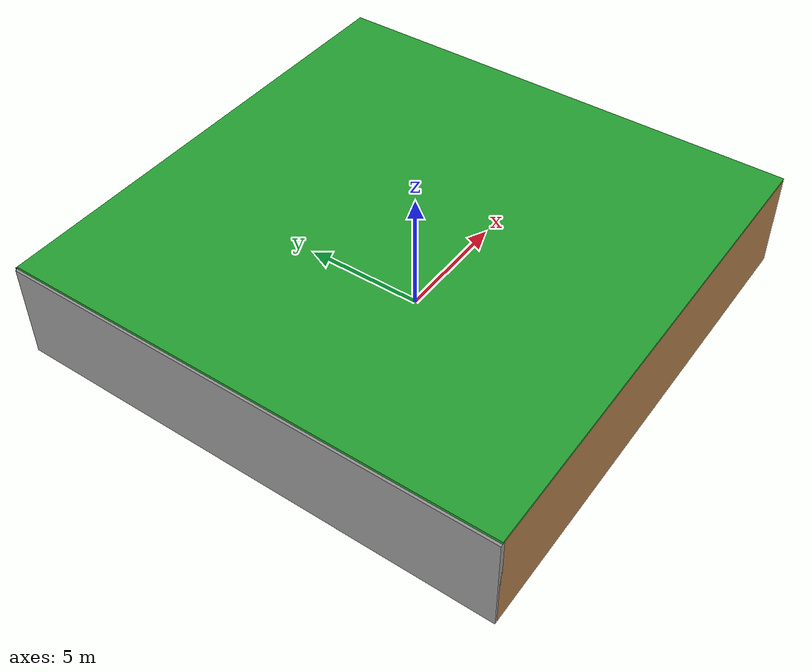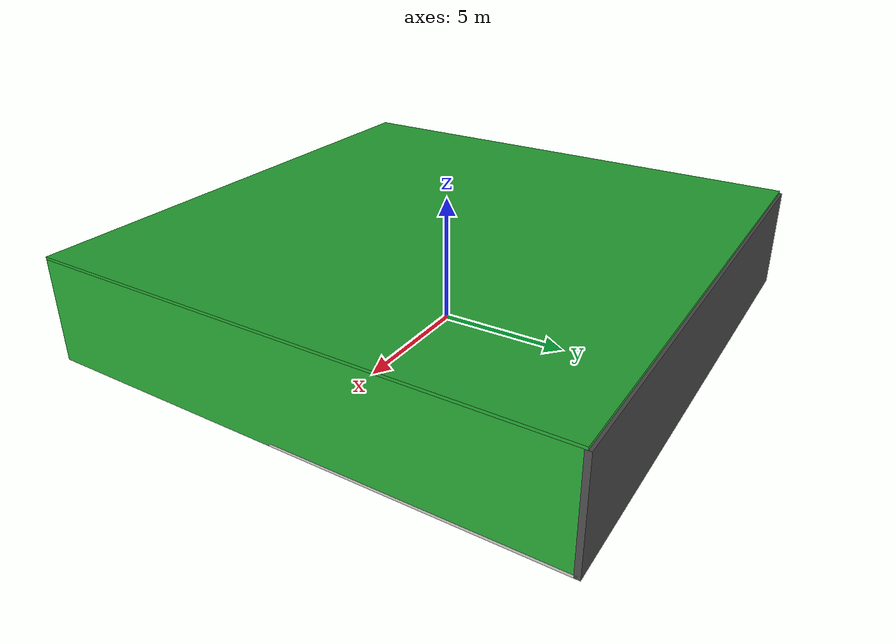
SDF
<sdf version="1.4">
 <world name="default">
  <physics type="ode">
   <max_step_size>0.001</max_step_size>
   <real_time_factor>1</real_time_factor>
   <real_time_update_rate>1000</real_time_update_rate>
   <gravity>0 0 -9.8</gravity>
  </physics>
  <scene><ambient>0.4 0.4 0.4 1</ambient><background>0.7 0.7 0.7 1</background><shadows>1</shadows></scene>
  <model name="Surrounding">
   <static>1</static>
   <link name="Ceiling">
    <collision name="Ceiling_Collision"><geometry><box><size>20 20 0.1</size></box></geometry></collision>
    <visual name="Ceiling_Visual">
     <geometry><box><size>20 20 0.1</size></box></geometry>
     <material>
      <script><uri>file://media/materials/scripts/gazebo.material</uri><name>Gazebo/Green</name></script>
     </material>
    </visual>
    <pose>0 0 4.05 0 0 0</pose>
   </link>
   <link name="Wall_South">
    <collision name="Wall_South_Collision">
     <geometry><box><size>20 0 4</size></box></geometry>
     <pose>0 0 2 0 -0 0</pose>
    </collision>
    <visual name="Wall_South_Visual">
     <pose>0 0 2 0 -0 0</pose>
     <geometry><box><size>20 0 4</size></box></geometry>
     <material>
      <script><uri>file://media/materials/scripts/gazebo.material</uri><name>Gazebo/WoodFloor</name></script>
     </material>
    </visual>
    <velocity_decay><linear>0</linear><angular>0</angular></velocity_decay>
    <pose>0 -10 0 0 -0 0</pose>
   </link>
   <link name="Wall_East">
    <collision name="Wall_21_Collision">
     <geometry><box><size>20 0 4</size></box></geometry>
     <pose>0 0 2 0 -0 0</pose>
    </collision>
    <visual name="Wall_21_Visual">
     <pose>0 0 2 0 -0 0</pose>
     <geometry><box><size>20 0 4</size></box></geometry>
     <material>
      <script><uri>file://media/materials/scripts/gazebo.material</uri><name>Gazebo/Green</name></script>
     </material>
    </visual>
    <velocity_decay><linear>0</linear><angular>0</angular></velocity_decay>
    <pose>10 0 0 0 -0 1.5708</pose>
   </link>
   <link name="Wall_North">
    <collision name="Wall_22_Collision">
     <geometry><box><size>20 0.2 4</size></box></geometry>
     <pose>0 0 2 0 -0 0</pose>
    </collision>
    <visual name="Wall_22_Visual">
     <pose>0 0 2 0 -0 0</pose>
     <geometry><box><size>20 0.2 4</size></box></geometry>
     <material>
      <script><uri>file://media/materials/scripts/gazebo.material</uri><name>Gazebo/DarkGrey</name></script>
     </material>
    </visual>
    <velocity_decay><linear>0</linear><angular>0</angular></velocity_decay>
    <pose>0 10 0 0 -0 0</pose>
   </link>
   <link name="Wall_West">
    <collision name="Wall_23_Collision">
     <geometry><box><size>20 0.2 4</size></box></geometry>
     <pose>0 0 2 0 -0 0</pose>
    </collision>
    <visual name="Wall_23_Visual">
     <pose>0 0 2 0 -0 0</pose>
     <geometry><box><size>20 0.2 4</size></box></geometry>
     <material>
      <script><uri>file://media/materials/scripts/gazebo.material</uri><name>Gazebo/GreyGradientSky</name></script>
     </material>
    </visual>
    <velocity_decay><linear>0</linear><angular>0</angular></velocity_decay>
    <pose>-10 0 0 0 0 -1.5708</pose>
   </link>
   <link name="Ground_link">
    <collision name="collision">
     <pose>0 0 .05 0 -0 0</pose>
     <geometry><box><size>20 20 0.1</size></box></geometry>
    </collision>
    <visual name="visual">
     <pose>0 0 .05 0 -0 0</pose>
     <geometry><box><size>20 20 0.1</size></box></geometry>
     <material>
      <script><uri>file://media/materials/scripts/gazebo.material</uri><name>Gazebo/CeilingTiled</name></script>
     </material>
    </visual>
   </link>
   <static>1</static>
  </model>
  <spherical_coordinates>
   <surface_model>EARTH_WGS84</surface_model>
   <latitude_deg>0</latitude_deg>
   <longitude_deg>0</longitude_deg>
   <elevation>0</elevation>
   <heading_deg>0</heading_deg>
  </spherical_coordinates>
  <light name="lightball_0" type="diffuse">
   <diffuse>0.8 0.8 0.8 1</diffuse>
   <specular>0.2 0.2 0.2 1</specular>
   <attenuation>
    <range>100</range>
    <constant>0.7</constant>
    <linear>0.01</linear>
    <quadratic>0.001</quadratic>
   </attenuation>
   <direction>-0.5 0.1 -0.9</direction>
   <pose>2.53066693829 -1.25502888344 3.6212334082 0 0 0</pose>
  </light>
  <light name="lightball_1" type="diffuse">
   <diffuse>0.8 0.8 0.8 1</diffuse>
   <specular>0.2 0.2 0.2 1</specular>
   <attenuation>
    <range>100</range>
    <constant>0.7</constant>
    <linear>0.01</linear>
    <quadratic>0.001</quadratic>
   </attenuation>
   <direction>-0.5 0.1 -0.9</direction>
   <pose>-4.41337788355 -6.8076167811 3.06293243785 0 0 0</pose>
  </light>
  <light name="lightball_2" type="diffuse">
   <diffuse>0.8 0.8 0.8 1</diffuse>
   <specular>0.2 0.2 0.2 1</specular>
   <attenuation>
    <range>100</range>
    <constant>0.7</constant>
    <linear>0.01</linear>
    <quadratic>0.001</quadratic>
   </attenuation>
   <direction>-0.5 0.1 -0.9</direction>
   <pose>8.25501089286 -4.34643745476 0.945350530854 0 0 0</pose>
  </light>
  <light name="lightball_3" type="diffuse">
   <diffuse>0.8 0.8 0.8 1</diffuse>
   <specular>0.2 0.2 0.2 1</specular>
   <attenuation>
    <range>100</range>
    <constant>0.7</constant>
    <linear>0.01</linear>
    <quadratic>0.001</quadratic>
   </attenuation>
   <direction>-0.5 0.1 -0.9</direction>
   <pose>1.51019768937 1.21111602871 0.821755623127 0 0 0</pose>
  </light>
  <light name="lightball_4" type="diffuse">
   <diffuse>0.8 0.8 0.8 1</diffuse>
   <specular>0.2 0.2 0.2 1</specular>
   <attenuation>
    <range>100</range>
    <constant>0.7</constant>
    <linear>0.01</linear>
    <quadratic>0.001</quadratic>
   </attenuation>
   <direction>-0.5 0.1 -0.9</direction>
   <pose>-5.36056213309 2.56778521655 0.604694977024 0 0 0</pose>
  </light>
  <light name="lightball_5" type="diffuse">
   <diffuse>0.8 0.8 0.8 1</diffuse>
   <specular>0.2 0.2 0.2 1</specular>
   <attenuation>
    <range>100</range>
    <constant>0.7</constant>
    <linear>0.01</linear>
    <quadratic>0.001</quadratic>
   </attenuation>
   <direction>-0.5 0.1 -0.9</direction>
   <pose>9.43977529683 -5.75020779243 1.44314156411 0 0 0</pose>
  </light>
  <light name="lightball_6" type="diffuse">
   <diffuse>0.8 0.8 0.8 1</diffuse>
   <specular>0.2 0.2 0.2 1</specular>
   <attenuation>
    <range>100</range>
    <constant>0.7</constant>
    <linear>0.01</linear>
    <quadratic>0.001</quadratic>
   </attenuation>
   <direction>-0.5 0.1 -0.9</direction>
   <pose>-7.51977634355 -3.91309282339 1.34645099848 0 0 0</pose>
  </light>
  <light name="lightball_7" type="diffuse">
   <diffuse>0.8 0.8 0.8 1</diffuse>
   <specular>0.2 0.2 0.2 1</specular>
   <attenuation>
    <range>100</range>
    <constant>0.7</constant>
    <linear>0.01</linear>
    <quadratic>0.001</quadratic>
   </attenuation>
   <direction>-0.5 0.1 -0.9</direction>
   <pose>-1.54410584336 3.92878654275 1.6546441252 0 0 0</pose>
  </light>
  <light name="lightball_8" type="diffuse">
   <diffuse>0.8 0.8 0.8 1</diffuse>
   <specular>0.2 0.2 0.2 1</specular>
   <attenuation>
    <range>100</range>
    <constant>0.7</constant>
    <linear>0.01</linear>
    <quadratic>0.001</quadratic>
   </attenuation>
   <direction>-0.5 0.1 -0.9</direction>
   <pose>-6.35945607247 -5.97697455175 3.78225405416 0 0 0</pose>
  </light>
  <light name="lightball_9" type="diffuse">
   <diffuse>0.8 0.8 0.8 1</diffuse>
   <specular>0.2 0.2 0.2 1</specular>
   <attenuation>
    <range>100</range>
    <constant>0.7</constant>
    <linear>0.01</linear>
    <quadratic>0.001</quadratic>
   </attenuation>
   <direction>-0.5 0.1 -0.9</direction>
   <pose>8.3715850703 3.47740865482 3.09186941733 0 0 0</pose>
  </light>
  <light name="lightball_10" type="diffuse">
   <diffuse>0.8 0.8 0.8 1</diffuse>
   <specular>0.2 0.2 0.2 1</specular>
   <attenuation>
    <range>100</range>
    <constant>0.7</constant>
    <linear>0.01</linear>
    <quadratic>0.001</quadratic>
   </attenuation>
   <direction>-0.5 0.1 -0.9</direction>
   <pose>-2.74375083247 5.6576423025 2.72762267066 0 0 0</pose>
  </light>
  <light name="lightball_11" type="diffuse">
   <diffuse>0.8 0.8 0.8 1</diffuse>
   <specular>0.2 0.2 0.2 1</specular>
   <attenuation>
    <range>100</range>
    <constant>0.7</constant>
    <linear>0.01</linear>
    <quadratic>0.001</quadratic>
   </attenuation>
   <direction>-0.5 0.1 -0.9</direction>
   <pose>-1.04485085031 -1.32142743826 2.80873833195 0 0 0</pose>
  </light>
  <include><uri>model://table</uri><pose>-7.93341438153 -5.10238862344 0 0 0 1.87556483365</pose></include>
  <include>
   <uri>model://textured_shapes</uri>
   <pose>-3.91899666563 -5.2594070797 0 0 0 1.92514439746</pose>
  </include>
  <include>
   <uri>model://textured_shapes</uri>
   <pose>-4.72931711971 -1.05566486019 0 0 0 1.88729301322</pose>
  </include>
  <include>
   <uri>model://robocup_3Dsim_goal</uri>
   <pose>-4.13675593604 1.99252772583 0 0 0 1.97388112291</pose>
  </include>
  <include>
   <uri>model://textured_shapes</uri>
   <pose>-4.36742300642 4.98245777194 0 0 0 3.13765496053</pose>
  </include>
  <include><uri>model://cabinet</uri><pose>3.78562715914 1.61924556766 0 0 0 1.86708785238</pose></include>
 </world>
</sdf>

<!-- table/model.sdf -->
<sdf version="1.5">
  <model name="table">
    <static>true</static>
    <link name="link">
      <collision name="surface">
        <pose>0 0 1.0 0 0 0</pose>
        <geometry>
          <box>
            <size>1.5 0.8 0.03</size>
          </box>
        </geometry>
        <surface>
          <friction>
            <ode>
              <mu>0.6</mu>
              <mu2>0.6</mu2>
            </ode>
          </friction>
        </surface>
      </collision>
      <visual name="visual1">
        <pose>0 0 1.0 0 0 0</pose>
        <geometry>
          <box>
            <size>1.5 0.8 0.03</size>
          </box>
        </geometry>
        <material>
          <script>
            <uri>model://media/materials/scripts/gazebo.material</uri>
            <name>Gazebo/Wood</name>
          </script>
        </material>
      </visual>
      <collision name="front_left_leg">
        <pose>0.68 0.38 0.5 0 0 0</pose>
        <geometry>
          <cylinder>
            <radius>0.02</radius>
            <length>1.0</length>
          </cylinder>
        </geometry>
      </collision>
      <visual name="front_left_leg">
        <pose>0.68 0.38 0.5 0 0 0</pose>
        <geometry>
          <cylinder>
            <radius>0.02</radius>
            <length>1.0</length>
          </cylinder>
        </geometry>
        <material>
          <script>
            <uri>model://media/materials/scripts/gazebo.material</uri>
            <name>Gazebo/Grey</name>
          </script>
        </material>
      </visual>
      <collision name="front_right_leg">
        <pose>0.68 -0.38 0.5 0 0 0</pose>
        <geometry>
          <cylinder>
            <radius>0.02</radius>
            <length>1.0</length>
          </cylinder>
        </geometry>
      </collision>
      <visual name="front_right_leg">
        <pose>0.68 -0.38 0.5 0 0 0</pose>
        <geometry>
          <cylinder>
            <radius>0.02</radius>
            <length>1.0</length>
          </cylinder>
        </geometry>
        <material>
          <script>
            <uri>model://media/materials/scripts/gazebo.material</uri>
            <name>Gazebo/Grey</name>
          </script>
        </material>
      </visual>
      <collision name="back_right_leg">
        <pose>-0.68 -0.38 0.5 0 0 0</pose>
        <geometry>
          <cylinder>
            <radius>0.02</radius>
            <length>1.0</length>
          </cylinder>
        </geometry>
      </collision>
      <visual name="back_right_leg">
        <pose>-0.68 -0.38 0.5 0 0 0</pose>
        <geometry>
          <cylinder>
            <radius>0.02</radius>
            <length>1.0</length>
          </cylinder>
        </geometry>
        <material>
          <script>
            <uri>model://media/materials/scripts/gazebo.material</uri>
            <name>Gazebo/Grey</name>
          </script>
        </material>
      </visual>
      <collision name="back_left_leg">
        <pose>-0.68 0.38 0.5 0 0 0</pose>
        <geometry>
          <cylinder>
            <radius>0.02</radius>
            <length>1.0</length>
          </cylinder>
        </geometry>
      </collision>
      <visual name="back_left_leg">
        <pose>-0.68 0.38 0.5 0 0 0</pose>
        <geometry>
          <cylinder>
            <radius>0.02</radius>
            <length>1.0</length>
          </cylinder>
        </geometry>
        <material>
          <script>
            <uri>model://media/materials/scripts/gazebo.material</uri>
            <name>Gazebo/Grey</name>
          </script>
        </material>
      </visual>
    </link>
  </model>
</sdf>

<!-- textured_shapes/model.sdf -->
<sdf version="1.6">
  <model name="textured_shapes">
    <pose>0 0 0.5 0 0 0</pose>
    <link name="box">
      <pose>0 -1.5 0 0 0 0</pose>
      <collision name="collision">
        <geometry>
          <box>
            <size>1 1 1</size>
          </box>
        </geometry>
      </collision>
      <visual name="visual">
        <geometry>
          <box>
            <size>1 1 1</size>
          </box>
        </geometry>
        <material>
          <script>
            <uri>model://../model_source/models/textured_shapes/materials/scripts</uri>
            <uri>model://../model_source/models/textured_shapes/materials/textures</uri>
            <name>TexturedShape/Squares</name>
          </script>
        </material>
      </visual>
    </link>
    <link name="sphere">
      <collision name="collision">
        <geometry>
          <sphere>
            <radius>0.5</radius>
          </sphere>
        </geometry>
      </collision>
      <visual name="visual">
        <geometry>
          <sphere>
            <radius>0.5</radius>
          </sphere>
        </geometry>
        <material>
          <script>
            <uri>model://../model_source/models/textured_shapes/materials/scripts</uri>
            <uri>model://../model_source/models/textured_shapes/materials/textures</uri>
            <name>TexturedShape/Squares</name>
          </script>
        </material>
      </visual>
    </link>
    <link name="cylinder">
      <pose>0 1.5 0 0 0 0</pose>
      <collision name="collision">
        <geometry>
          <cylinder>
            <radius>0.5</radius>
            <length>1</length>
          </cylinder>
        </geometry>
      </collision>
      <visual name="visual">
        <geometry>
          <cylinder>
            <radius>0.5</radius>
            <length>1</length>
          </cylinder>
        </geometry>
        <material>
          <script>
            <uri>model://../model_source/models/textured_shapes/materials/scripts</uri>
            <uri>model://../model_source/models/textured_shapes/materials/textures</uri>
            <name>TexturedShape/Squares</name>
          </script>
        </material>
      </visual>
    </link>
  </model>
</sdf>

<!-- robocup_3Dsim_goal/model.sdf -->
<sdf version="1.5">
  <model name="robocup_3d_goal">
    <static>true</static>
    <link name="left_post">
      <pose>0 1.05 0.45 0 0 0</pose>
      <collision name="collision">
        <geometry>
          <cylinder>
            <radius>0.05</radius>
            <length>0.9</length>
          </cylinder>
        </geometry>
      </collision>
      <visual name="visual">
        <geometry>
          <cylinder>
            <radius>0.05</radius>
            <length>0.9</length>
          </cylinder>
        </geometry>
        <material>
          <script>
            <uri>file://media/materials/scripts/gazebo.material</uri>
            <name>Gazebo/ZincYellow</name>
          </script>
        </material>
      </visual>
    </link>
    <link name="left_support_horiz_lower">
      <pose>0.30 1.05 0.01 0 0 0</pose>
      <collision name="collision">
        <geometry>
          <box>
            <size>0.50 0.02 0.02</size>
          </box>
        </geometry>
      </collision>
      <visual name="visual">
        <geometry>
          <box>
            <size>0.50 0.02 0.02</size>
          </box>
        </geometry>
        <material>
          <script>
            <uri>file://media/materials/scripts/gazebo.material</uri>
            <name>Gazebo/White</name>
          </script>
        </material>
      </visual>
    </link>
    <link name="left_support_horiz_upper">
      <pose>0.30 1.05 0.79 0 0 0</pose>
      <collision name="collision">
        <geometry>
          <box>
            <size>0.50 0.02 0.02</size>
          </box>
        </geometry>
      </collision>
      <visual name="visual">
        <geometry>
          <box>
            <size>0.50 0.02 0.02</size>
          </box>
        </geometry>
        <material>
          <script>
            <uri>file://media/materials/scripts/gazebo.material</uri>
            <name>Gazebo/White</name>
          </script>
        </material>
      </visual>
    </link>
    <link name="left_support_vertical">
      <pose>0.56 1.05 0.4 0 1.5708 0</pose>
      <collision name="collision">
        <geometry>
          <box>
            <size>0.80 0.02 0.02</size>
          </box>
        </geometry>
      </collision>
      <visual name="visual">
        <geometry>
          <box>
            <size>0.80 0.02 0.02</size>
          </box>
        </geometry>
        <material>
          <script>
            <uri>file://media/materials/scripts/gazebo.material</uri>
            <name>Gazebo/White</name>
          </script>
        </material>
      </visual>
    </link>
    <link name="right_support_horiz_lower">
      <pose>0.30 -1.05 0.01 0 0 0</pose>
      <collision name="collision">
        <geometry>
          <box>
            <size>0.50 0.02 0.02</size>
          </box>
        </geometry>
      </collision>
      <visual name="visual">
        <geometry>
          <box>
            <size>0.50 0.02 0.02</size>
          </box>
        </geometry>
        <material>
          <script>
            <uri>file://media/materials/scripts/gazebo.material</uri>
            <name>Gazebo/White</name>
          </script>
        </material>
      </visual>
    </link>
    <link name="right_support_horiz_upper">
      <pose>0.30 -1.05 0.79 0 0 0</pose>
      <collision name="collision">
        <geometry>
          <box>
            <size>0.50 0.02 0.02</size>
          </box>
        </geometry>
      </collision>
      <visual name="visual">
        <geometry>
          <box>
            <size>0.50 0.02 0.02</size>
          </box>
        </geometry>
        <material>
          <script>
            <uri>file://media/materials/scripts/gazebo.material</uri>
            <name>Gazebo/White</name>
          </script>
        </material>
      </visual>
    </link>
    <link name="right_support_vertical">
      <pose>0.56 -1.05 0.4 0 1.5708 0</pose>
      <collision name="collision">
        <geometry>
          <box>
            <size>0.80 0.02 0.02</size>
          </box>
        </geometry>
      </collision>
      <visual name="visual">
        <geometry>
          <box>
            <size>0.80 0.02 0.02</size>
          </box>
        </geometry>
        <material>
          <script>
            <uri>file://media/materials/scripts/gazebo.material</uri>
            <name>Gazebo/White</name>
          </script>
        </material>
      </visual>
    </link>
    <link name="center_support_horiz_lower">
      <pose>0.56 0 0.01 0 1.5708 0</pose>
      <collision name="collision">
        <geometry>
          <box>
            <size>0.02 2.08 0.02</size>
          </box>
        </geometry>
      </collision>
      <visual name="visual">
        <geometry>
          <box>
            <size>0.02 2.08 0.02</size>
          </box>
        </geometry>
        <material>
          <script>
            <uri>file://media/materials/scripts/gazebo.material</uri>
            <name>Gazebo/White</name>
          </script>
        </material>
      </visual>
    </link>
    <link name="center_support_horiz_upper">
      <pose>0.56 0 0.79 0 1.5708 0</pose>
      <collision name="collision">
        <geometry>
          <box>
            <size>0.02 2.08 0.02</size>
          </box>
        </geometry>
      </collision>
      <visual name="visual">
        <geometry>
          <box>
            <size>0.02 2.08 0.02</size>
          </box>
        </geometry>
        <material>
          <script>
            <uri>file://media/materials/scripts/gazebo.material</uri>
            <name>Gazebo/White</name>
          </script>
        </material>
      </visual>
    </link>
    <link name="right_post">
      <pose>0 -1.05 0.45 0 0 0</pose>
      <collision name="collision">
        <geometry>
          <cylinder>
            <radius>0.05</radius>
            <length>0.9</length>
          </cylinder>
        </geometry>
      </collision>
      <visual name="visual">
        <geometry>
          <cylinder>
            <radius>0.05</radius>
            <length>0.9</length>
          </cylinder>
        </geometry>
        <material>
          <script>
            <uri>file://media/materials/scripts/gazebo.material</uri>
            <name>Gazebo/ZincYellow</name>
          </script>
        </material>
      </visual>
    </link>
    <link name="crossbar">
      <pose>0 0 0.85 1.57 1.57 0</pose>
      <collision name="collision">
        <geometry>
          <cylinder>
            <radius>0.05</radius>
            <length>2.0</length>
          </cylinder>
        </geometry>
      </collision>
      <visual name="visual">
        <geometry>
          <cylinder>
            <radius>0.05</radius>
            <length>2.0</length>
          </cylinder>
        </geometry>
        <material>
          <script>
            <uri>file://media/materials/scripts/gazebo.material</uri>
            <name>Gazebo/ZincYellow</name>
          </script>
        </material>
      </visual>
    </link>
    <link name="center_net">
      <pose>0.56 0 0.40 0 0 0</pose>
      <collision name="collision">
        <geometry>
          <box>
            <size>0.01 2.1 0.80</size>
          </box>
        </geometry>
      </collision>
      <visual name="visual">
        <geometry>
          <box>
            <size>0.01 2.1 0.80</size>
          </box>
        </geometry>
        <material>
          <script>
            <uri>model://../model_source/models/robocup09_spl_field/materials/scripts/</uri>
            <uri>model://../model_source/models/robocup09_spl_field/materials/textures/</uri>
            <name>RoboCup/Net</name>
          </script>
        </material>
      </visual>
    </link>
    <link name="left_net">
      <pose>0.30 1.05 0.40 0 0 0</pose>
      <collision name="collision">
        <geometry>
          <box>
            <size>0.50 0.01 0.76</size>
          </box>
        </geometry>
      </collision>
      <visual name="visual">
        <geometry>
          <box>
            <size>0.50 0.01 0.76</size>
          </box>
        </geometry>
        <material>
          <script>
            <uri>model://../model_source/models/robocup09_spl_field/materials/scripts/</uri>
            <uri>model://../model_source/models/robocup09_spl_field/materials/textures/</uri>
            <name>RoboCup/Net</name>
          </script>
        </material>
      </visual>
    </link>
    <link name="right_net">
      <pose>0.30 -1.05 0.40 0 0 0</pose>
      <collision name="collision">
        <geometry>
          <box>
            <size>0.50 0.01 0.76</size>
          </box>
        </geometry>
      </collision>
      <visual name="visual">
        <geometry>
          <box>
            <size>0.50 0.01 0.76</size>
          </box>
        </geometry>
        <material>
          <script>
            <uri>model://../model_source/models/robocup09_spl_field/materials/scripts/</uri>
            <uri>model://../model_source/models/robocup09_spl_field/materials/textures/</uri>
            <name>RoboCup/Net</name>
          </script>
        </material>
      </visual>
    </link>
  </model>
</sdf>

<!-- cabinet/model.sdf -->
<sdf version="1.5">
  <model name="cabinet">
    <static>true</static>
    <link name="cabinet_bottom_plate">
      <inertial>
        <pose>0 0 -1 0 0 0</pose>
        <inertia>
          <ixx>2.050000</ixx>
          <ixy>0</ixy>
          <ixz>0</ixz>
          <iyy>2.050000</iyy>
          <iyz>0</iyz>
          <izz>2.050000</izz>
        </inertia>
        <mass>25.000000</mass>
      </inertial>
      <collision name="cabinet_bottom_plate_geom">
        <pose>0 0 0.010000 0 0 0</pose>
        <geometry>
          <box>
            <size>0.450000 0.450000 0.020000</size>
          </box>
        </geometry>
      </collision>
      <visual name="cabinet_bottom_plate_geom_visual">
        <pose>0 0 0.010000 0 0 0</pose>
        <geometry>
          <box>
            <size>0.450000 0.450000 0.020000</size>
          </box>
        </geometry>
        <material>
          <script>
            <uri>model://media/materials/scripts/gazebo.material</uri>
            <name>Gazebo/Wood</name>
          </script>
        </material>
      </visual>
      <collision name="cabinet_bottom_plate_geom_cabinet_back_plate">
        <pose>0.235000 0 0.510000 0 0 0</pose>
        <geometry>
          <box>
            <size>0.020000 0.450000 1.020000</size>
          </box>
        </geometry>
      </collision>
      <visual name="cabinet_bottom_plate_geom_cabinet_back_plate_visual">
        <pose>0.235000 0 0.510000 0 0 0</pose>
        <geometry>
          <box>
            <size>0.020000 0.450000 1.020000</size>
          </box>
        </geometry>
        <material>
          <script>
            <uri>model://media/materials/scripts/gazebo.material</uri>
            <name>Gazebo/Wood</name>
          </script>
        </material>
      </visual>
      <collision name="cabinet_bottom_plate_geom_cabinet_left_plate">
        <pose>0 0.235000 0.510000 0 0 0</pose>
        <geometry>
          <box>
            <size>0.450000 0.020000 1.020000</size>
          </box>
        </geometry>
      </collision>
      <visual name="cabinet_bottom_plate_geom_cabinet_left_plate_visual">
        <pose>0 0.235000 0.510000 0 0 0</pose>
        <geometry>
          <box>
            <size>0.450000 0.020000 1.020000</size>
          </box>
        </geometry>
        <material>
          <script>
            <uri>model://media/materials/scripts/gazebo.material</uri>
            <name>Gazebo/Wood</name>
          </script>
        </material>
      </visual>
      <collision name="cabinet_bottom_plate_geom_cabinet_middle_plate">
        <pose>0 0 0.510000 0 0 0</pose>
        <geometry>
          <box>
            <size>0.450000 0.450000 0.020000</size>
          </box>
        </geometry>
      </collision>
      <visual name="cabinet_bottom_plate_geom_cabinet_middle_plate_visual">
        <pose>0 0 0.510000 0 0 0</pose>
        <geometry>
          <box>
            <size>0.450000 0.450000 0.020000</size>
          </box>
        </geometry>
        <material>
          <script>
            <uri>model://media/materials/scripts/gazebo.material</uri>
            <name>Gazebo/Wood</name>
          </script>
        </material>
      </visual>
      <collision name="cabinet_bottom_plate_geom_cabinet_right_plate">
        <pose>0 -0.235000 0.510000 0 0 0</pose>
        <geometry>
          <box>
            <size>0.450000 0.020000 1.020000</size>
          </box>
        </geometry>
      </collision>
      <visual name="cabinet_bottom_plate_geom_cabinet_right_plate_visual">
        <pose>0 -0.235000 0.510000 0 0 0</pose>
        <geometry>
          <box>
            <size>0.450000 0.020000 1.020000</size>
          </box>
        </geometry>
        <material>
          <script>
            <uri>model://media/materials/scripts/gazebo.material</uri>
            <name>Gazebo/Wood</name>
          </script>
        </material>
      </visual>
      <collision name="cabinet_bottom_plate_geom_cabinet_top_plate">
        <pose>0 0 1.010000 0 0 0</pose>
        <geometry>
          <box>
            <size>0.450000 0.450000 0.020000</size>
          </box>
        </geometry>
      </collision>
      <visual name="cabinet_bottom_plate_geom_cabinet_top_plate_visual">
        <pose>0 0 1.010000 0 0 0</pose>
        <geometry>
          <box>
            <size>0.450000 0.450000 0.020000</size>
          </box>
        </geometry>
        <material>
          <script>
            <uri>model://media/materials/scripts/gazebo.material</uri>
            <name>Gazebo/Wood</name>
          </script>
        </material>
      </visual>
    </link>
  </model>
</sdf>
